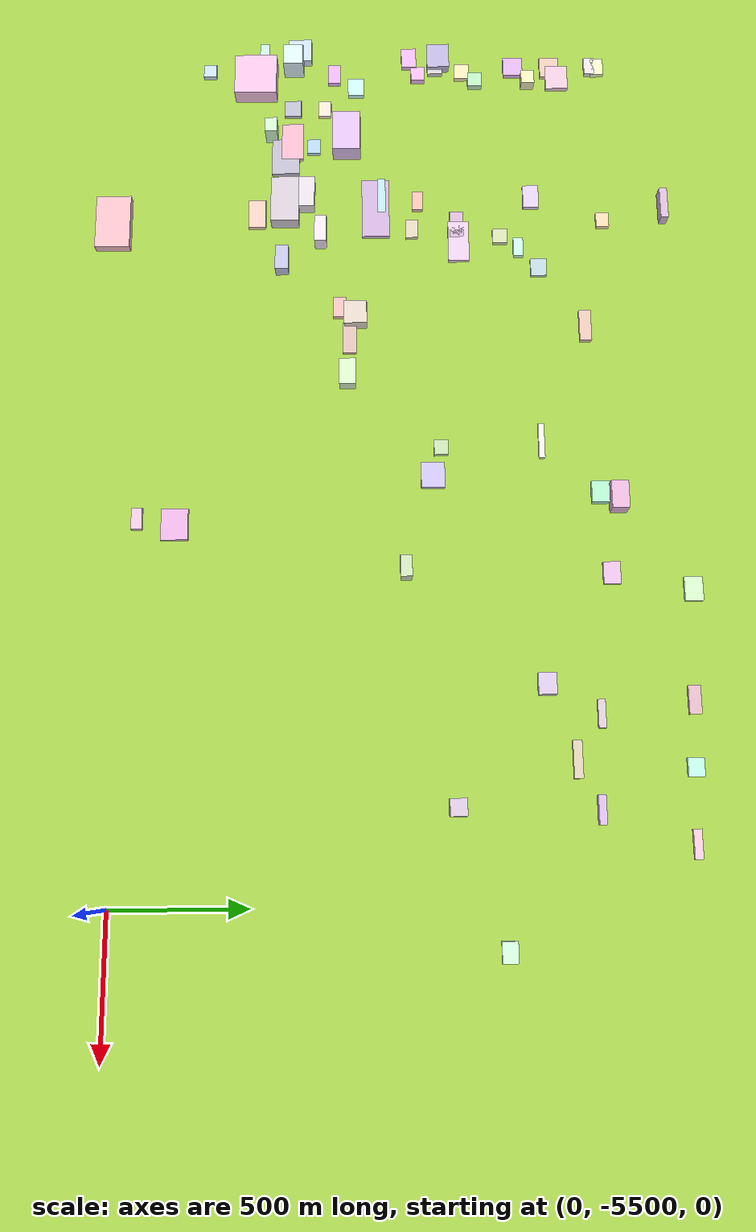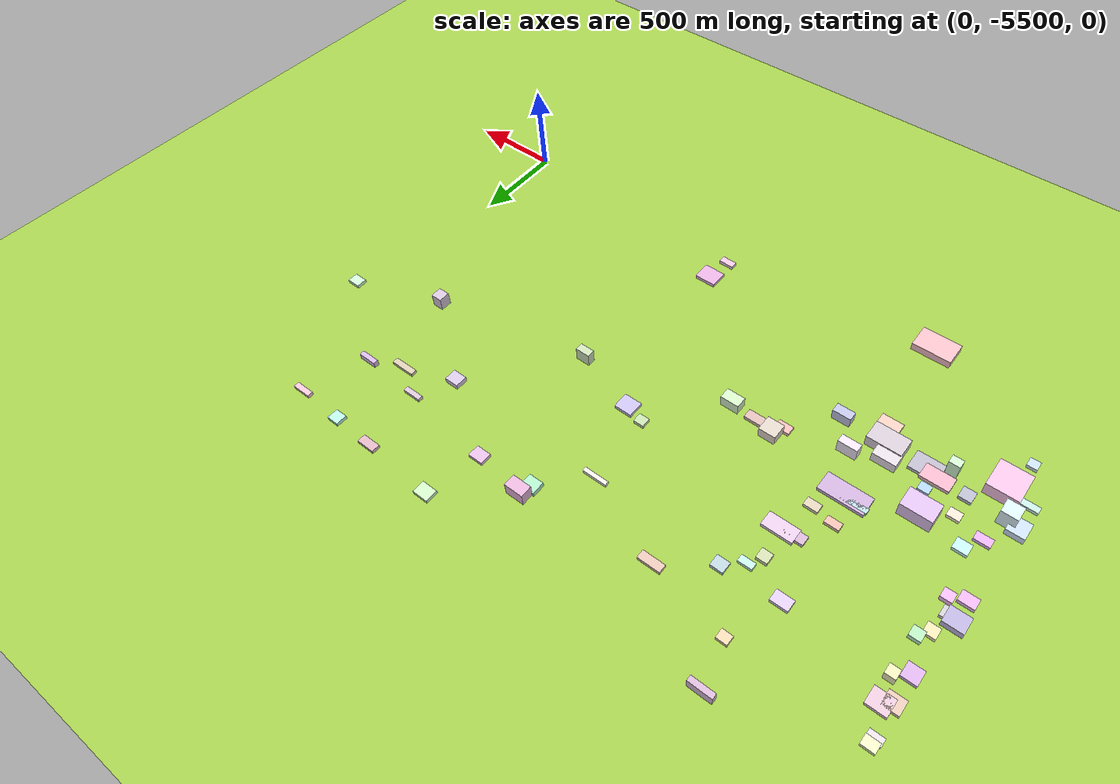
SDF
<sdf version="1.9">
 <world name="city_map">
  <model name="ground_plane">
   <static>1</static>
   <link name="link">
    <collision name="collision">
     <geometry><plane><normal>0 0 1</normal><size>11000 11000</size></plane></geometry>
    </collision>
    <visual name="visual">
     <geometry><plane><normal>0 0 1</normal><size>11000 11000</size></plane></geometry>
     <material>
      <ambient>0.551 0.712 0.210 1</ambient>
      <diffuse>0.651 0.812 0.310 1</diffuse>
      <specular>0.1 0.1 0.05 1</specular>
     </material>
    </visual>
   </link>
  </model>
  <model name="building_653500482">
   <static>1</static>
   <pose>-2604.0051835988834 -5582.626435734209 22.200000000000003 0 0 0</pose>
   <link name="link">
    <collision name="collision">
     <geometry><box><size>216.86070000015434 136.2527178387331 44.400000000000006</size></box></geometry>
    </collision>
    <visual name="visual">
     <cast_shadows>false</cast_shadows>
     <geometry><box><size>216.86070000015434 136.2527178387331 44.400000000000006</size></box></geometry>
     <material>
      <ambient>0.874 0.657 0.689 1</ambient>
      <diffuse>0.974 0.757 0.789 1</diffuse>
      <specular>0.292 0.227 0.237 1</specular>
      <emissive>0.01 0.01 0.01 1</emissive>
     </material>
    </visual>
   </link>
  </model>
  <model name="building_520531805">
   <static>1</static>
   <pose>-3240.141640792003 -5026.5202927813725 37.8 0 0 0</pose>
   <link name="link">
    <collision name="collision">
     <geometry><box><size>168.93913088291936 168.6756000001921 75.6</size></box></geometry>
    </collision>
    <visual name="visual">
     <cast_shadows>false</cast_shadows>
     <geometry><box><size>168.93913088291936 168.6756000001921 75.6</size></box></geometry>
     <material>
      <ambient>0.885 0.679 0.810 1</ambient>
      <diffuse>0.985 0.779 0.910 1</diffuse>
      <specular>0.296 0.234 0.273 1</specular>
      <emissive>0.01 0.01 0.01 1</emissive>
     </material>
    </visual>
   </link>
  </model>
  <model name="building_821050579">
   <static>1</static>
   <pose>-2662.0593865212245 -4547.052437178215 10.0 0 0 0</pose>
   <link name="link">
    <collision name="collision">
     <geometry><box><size>244.63290000054627 108.05267966975711 20</size></box></geometry>
    </collision>
    <visual name="visual">
     <cast_shadows>false</cast_shadows>
     <geometry><box><size>244.63290000054627 108.05267966975711 20</size></box></geometry>
     <material>
      <ambient>0.718 0.606 0.764 1</ambient>
      <diffuse>0.818 0.706 0.864 1</diffuse>
      <specular>0.245 0.212 0.259 1</specular>
      <emissive>0.01 0.01 0.01 1</emissive>
     </material>
    </visual>
   </link>
  </model>
  <model name="building_314246355">
   <static>1</static>
   <pose>-2685.380747875094 -4904.575528613325 32.400000000000006 0 0 0</pose>
   <link name="link">
    <collision name="collision">
     <geometry><box><size>188.5113000001155 109.05462941880297 64.80000000000001</size></box></geometry>
    </collision>
    <visual name="visual">
     <cast_shadows>false</cast_shadows>
     <geometry><box><size>188.5113000001155 109.05462941880297 64.80000000000001</size></box></geometry>
     <material>
      <ambient>0.743 0.704 0.743 1</ambient>
      <diffuse>0.843 0.804 0.843 1</diffuse>
      <specular>0.253 0.241 0.253 1</specular>
      <emissive>0.01 0.01 0.01 1</emissive>
     </material>
    </visual>
   </link>
  </model>
  <model name="building_877271874">
   <static>1</static>
   <pose>-2974.4919341141454 -4660.538683888396 42.900000000000006 0 0 0</pose>
   <link name="link">
    <collision name="collision">
     <geometry><box><size>167.13270000030178 110.57020615283798 85.80000000000001</size></box></geometry>
    </collision>
    <visual name="visual">
     <cast_shadows>false</cast_shadows>
     <geometry><box><size>167.13270000030178 110.57020615283798 85.80000000000001</size></box></geometry>
     <material>
      <ambient>0.783 0.664 0.839 1</ambient>
      <diffuse>0.883 0.764 0.939 1</diffuse>
      <specular>0.265 0.229 0.282 1</specular>
      <emissive>0.01 0.01 0.01 1</emissive>
     </material>
    </visual>
   </link>
  </model>
  <model name="building_73124910">
   <static>1</static>
   <pose>-2895.2679757678984 -4904.899736270048 10.0 0 0 0</pose>
   <link name="link">
    <collision name="collision">
     <geometry><box><size>152.08110000028796 109.29157100156543 20</size></box></geometry>
    </collision>
    <visual name="visual">
     <cast_shadows>false</cast_shadows>
     <geometry><box><size>152.08110000028796 109.29157100156543 20</size></box></geometry>
     <material>
      <ambient>0.652 0.640 0.706 1</ambient>
      <diffuse>0.752 0.740 0.806 1</diffuse>
      <specular>0.226 0.222 0.242 1</specular>
      <emissive>0.01 0.01 0.01 1</emissive>
     </material>
    </visual>
   </link>
  </model>
  <model name="building_66953042">
   <static>1</static>
   <pose>-2517.160657430864 -4220.694569329739 10.0 0 0 0</pose>
   <link name="link">
    <collision name="collision">
     <geometry><box><size>165.35670000005354 80.96472344231486 20</size></box></geometry>
    </collision>
    <visual name="visual">
     <cast_shadows>false</cast_shadows>
     <geometry><box><size>165.35670000005354 80.96472344231486 20</size></box></geometry>
     <material>
      <ambient>0.814 0.716 0.820 1</ambient>
      <diffuse>0.914 0.816 0.920 1</diffuse>
      <specular>0.274 0.245 0.276 1</specular>
      <emissive>0.01 0.01 0.01 1</emissive>
     </material>
    </visual>
   </link>
  </model>
  <model name="building_295627989">
   <static>1</static>
   <pose>-2962.5813234051216 -4878.330231258752 10.5 0 0 0</pose>
   <link name="link">
    <collision name="collision">
     <geometry><box><size>154.2900000000742 85.47857116064893 21.0</size></box></geometry>
    </collision>
    <visual name="visual">
     <cast_shadows>false</cast_shadows>
     <geometry><box><size>154.2900000000742 85.47857116064893 21.0</size></box></geometry>
     <material>
      <ambient>0.848 0.631 0.701 1</ambient>
      <diffuse>0.948 0.731 0.801 1</diffuse>
      <specular>0.284 0.219 0.240 1</specular>
      <emissive>0.01 0.01 0.01 1</emissive>
     </material>
    </visual>
   </link>
  </model>
  <model name="building_99820344">
   <static>1</static>
   <pose>-1373.2390480153508 -5305.4322332134 10.0 0 0 0</pose>
   <link name="link">
    <collision name="collision">
     <geometry><box><size>119.62469999957648 100.49652009439666 20</size></box></geometry>
    </collision>
    <visual name="visual">
     <cast_shadows>false</cast_shadows>
     <geometry><box><size>119.62469999957648 100.49652009439666 20</size></box></geometry>
     <material>
      <ambient>0.804 0.605 0.786 1</ambient>
      <diffuse>0.904 0.705 0.886 1</diffuse>
      <specular>0.271 0.211 0.266 1</specular>
      <emissive>0.01 0.01 0.01 1</emissive>
     </material>
    </visual>
   </link>
  </model>
  <model name="building_670335168">
   <static>1</static>
   <pose>-3340.657789854417 -4286.667918963547 19.86998374602054 0 0 0</pose>
   <link name="link">
    <collision name="collision">
     <geometry><box><size>105.08370000000866 89.0641605143381 39.73996749204108</size></box></geometry>
    </collision>
    <visual name="visual">
     <cast_shadows>false</cast_shadows>
     <geometry><box><size>105.08370000000866 89.0641605143381 39.73996749204108</size></box></geometry>
     <material>
      <ambient>0.651 0.616 0.774 1</ambient>
      <diffuse>0.751 0.716 0.874 1</diffuse>
      <specular>0.225 0.215 0.262 1</specular>
      <emissive>0.01 0.01 0.01 1</emissive>
     </material>
    </visual>
   </link>
  </model>
  <model name="building_588152921">
   <static>1</static>
   <pose>-3247.281962087013 -3803.487144261264 10.0 0 0 0</pose>
   <link name="link">
    <collision name="collision">
     <geometry><box><size>104.00730134189341 89.11079999948157 20</size></box></geometry>
    </collision>
    <visual name="visual">
     <cast_shadows>false</cast_shadows>
     <geometry><box><size>104.00730134189341 89.11079999948157 20</size></box></geometry>
     <material>
      <ambient>0.824 0.703 0.767 1</ambient>
      <diffuse>0.924 0.803 0.867 1</diffuse>
      <specular>0.277 0.241 0.260 1</specular>
      <emissive>0.01 0.01 0.01 1</emissive>
     </material>
    </visual>
   </link>
  </model>
  <model name="building_729136275">
   <static>1</static>
   <pose>-2721.057861055257 -4824.314860981551 28.893648101877897 0 0 0</pose>
   <link name="link">
    <collision name="collision">
     <geometry><box><size>126.48450000008182 72.43606522774323 57.787296203755794</size></box></geometry>
    </collision>
    <visual name="visual">
     <cast_shadows>false</cast_shadows>
     <geometry><box><size>126.48450000008182 72.43606522774323 57.787296203755794</size></box></geometry>
     <material>
      <ambient>0.805 0.777 0.808 1</ambient>
      <diffuse>0.905 0.877 0.908 1</diffuse>
      <specular>0.271 0.263 0.272 1</specular>
      <emissive>0.01 0.01 0.01 1</emissive>
     </material>
    </visual>
   </link>
  </model>
  <model name="building_86624100">
   <static>1</static>
   <pose>-3371.028400906166 -4850.050272665423 19.91263633964656 0 0 0</pose>
   <link name="link">
    <collision name="collision">
     <geometry><box><size>94.84843902376116 94.49430000008618 39.82527267929312</size></box></geometry>
    </collision>
    <visual name="visual">
     <cast_shadows>false</cast_shadows>
     <geometry><box><size>94.84843902376116 94.49430000008618 39.82527267929312</size></box></geometry>
     <material>
      <ambient>0.716 0.779 0.894 1</ambient>
      <diffuse>0.816 0.879 0.994 1</diffuse>
      <specular>0.245 0.264 0.298 1</specular>
      <emissive>0.01 0.01 0.01 1</emissive>
     </material>
    </visual>
   </link>
  </model>
  <model name="building_515723981">
   <static>1</static>
   <pose>-1555.133530322658 -4340.096439708893 10.0 0 0 0</pose>
   <link name="link">
    <collision name="collision">
     <geometry><box><size>98.91499821384119 88.46699999984509 20</size></box></geometry>
    </collision>
    <visual name="visual">
     <cast_shadows>false</cast_shadows>
     <geometry><box><size>98.91499821384119 88.46699999984509 20</size></box></geometry>
     <material>
      <ambient>0.704 0.666 0.836 1</ambient>
      <diffuse>0.804 0.766 0.936 1</diffuse>
      <specular>0.241 0.230 0.281 1</specular>
      <emissive>0.01 0.01 0.01 1</emissive>
     </material>
    </visual>
   </link>
  </model>
  <model name="building_276921543">
   <static>1</static>
   <pose>-2203.6096288548183 -4628.225660254877 28.906833826541146 0 0 0</pose>
   <link name="link">
    <collision name="collision">
     <geometry><box><size>92.6850000002375 87.3601793160458 57.81366765308229</size></box></geometry>
    </collision>
    <visual name="visual">
     <cast_shadows>false</cast_shadows>
     <geometry><box><size>92.6850000002375 87.3601793160458 57.81366765308229</size></box></geometry>
     <material>
      <ambient>0.795 0.743 0.699 1</ambient>
      <diffuse>0.895 0.843 0.799 1</diffuse>
      <specular>0.269 0.253 0.240 1</specular>
      <emissive>0.01 0.01 0.01 1</emissive>
     </material>
    </visual>
   </link>
  </model>
  <model name="building_341991905">
   <static>1</static>
   <pose>-2642.587936707573 -5016.179199569576 10.0 0 0 0</pose>
   <link name="link">
    <collision name="collision">
     <geometry><box><size>117.604500000418 67.24586556298046 20</size></box></geometry>
    </collision>
    <visual name="visual">
     <cast_shadows>false</cast_shadows>
     <geometry><box><size>117.604500000418 67.24586556298046 20</size></box></geometry>
     <material>
      <ambient>0.863 0.714 0.663 1</ambient>
      <diffuse>0.963 0.814 0.763 1</diffuse>
      <specular>0.289 0.244 0.229 1</specular>
      <emissive>0.01 0.01 0.01 1</emissive>
     </material>
    </visual>
   </link>
  </model>
  <model name="building_451141027">
   <static>1</static>
   <pose>-3313.3084012795453 -4874.203663980146 49.761233852646996 0 0 0</pose>
   <link name="link">
    <collision name="collision">
     <geometry><box><size>86.85749999996517 79.41345082587002 99.52246770529399</size></box></geometry>
    </collision>
    <visual name="visual">
     <cast_shadows>false</cast_shadows>
     <geometry><box><size>86.85749999996517 79.41345082587002 99.52246770529399</size></box></geometry>
     <material>
      <ambient>0.765 0.851 0.878 1</ambient>
      <diffuse>0.865 0.951 0.978 1</diffuse>
      <specular>0.260 0.285 0.293 1</specular>
      <emissive>0.01 0.01 0.01 1</emissive>
     </material>
    </visual>
   </link>
  </model>
  <model name="building_603742472">
   <static>1</static>
   <pose>-3321.1097241464604 -4996.060606077754 10.0 0 0 0</pose>
   <link name="link">
    <collision name="collision">
     <geometry><box><size>184.48200000035087 37.15221572890274 20</size></box></geometry>
    </collision>
    <visual name="visual">
     <cast_shadows>false</cast_shadows>
     <geometry><box><size>184.48200000035087 37.15221572890274 20</size></box></geometry>
     <material>
      <ambient>0.692 0.829 0.797 1</ambient>
      <diffuse>0.792 0.929 0.897 1</diffuse>
      <specular>0.238 0.279 0.269 1</specular>
      <emissive>0.01 0.01 0.01 1</emissive>
     </material>
    </visual>
   </link>
  </model>
  <model name="building_549142539">
   <static>1</static>
   <pose>-1458.0557611224112 -3649.4379624518892 36.8792950964704 0 0 0</pose>
   <link name="link">
    <collision name="collision">
     <geometry><box><size>105.1129137323899 64.26899999942037 73.7585901929408</size></box></geometry>
    </collision>
    <visual name="visual">
     <cast_shadows>false</cast_shadows>
     <geometry><box><size>105.1129137323899 64.26899999942037 73.7585901929408</size></box></geometry>
     <material>
      <ambient>0.808 0.618 0.758 1</ambient>
      <diffuse>0.908 0.718 0.858 1</diffuse>
      <specular>0.272 0.215 0.258 1</specular>
      <emissive>0.01 0.01 0.01 1</emissive>
     </material>
    </visual>
   </link>
  </model>
  <model name="building_146040116">
   <static>1</static>
   <pose>-3292.979910300491 -3831.2121629505623 10.0 0 0 0</pose>
   <link name="link">
    <collision name="collision">
     <geometry><box><size>85.54105360604868 76.80089999995943 20</size></box></geometry>
    </collision>
    <visual name="visual">
     <cast_shadows>false</cast_shadows>
     <geometry><box><size>85.54105360604868 76.80089999995943 20</size></box></geometry>
     <material>
      <ambient>0.815 0.692 0.632 1</ambient>
      <diffuse>0.915 0.792 0.732 1</diffuse>
      <specular>0.274 0.238 0.220 1</specular>
      <emissive>0.01 0.01 0.01 1</emissive>
     </material>
    </visual>
   </link>
  </model>
  <model name="building_841690448">
   <static>1</static>
   <pose>-2111.476673031957 -4651.747711486006 10.0 0 0 0</pose>
   <link name="link">
    <collision name="collision">
     <geometry><box><size>123.37650000004174 52.306851640249555 20</size></box></geometry>
    </collision>
    <visual name="visual">
     <cast_shadows>false</cast_shadows>
     <geometry><box><size>123.37650000004174 52.306851640249555 20</size></box></geometry>
     <material>
      <ambient>0.777 0.648 0.630 1</ambient>
      <diffuse>0.877 0.748 0.730 1</diffuse>
      <specular>0.263 0.224 0.219 1</specular>
      <emissive>0.01 0.01 0.01 1</emissive>
     </material>
    </visual>
   </link>
  </model>
  <model name="building_544273530">
   <static>1</static>
   <pose>-1958.949434418737 -4659.015786728819 30.94492301390327 0 0 0</pose>
   <link name="link">
    <collision name="collision">
     <geometry><box><size>102.28650000044581 62.461240091738254 61.88984602780654</size></box></geometry>
    </collision>
    <visual name="visual">
     <cast_shadows>false</cast_shadows>
     <geometry><box><size>102.28650000044581 62.461240091738254 61.88984602780654</size></box></geometry>
     <material>
      <ambient>0.749 0.852 0.695 1</ambient>
      <diffuse>0.849 0.952 0.795 1</diffuse>
      <specular>0.255 0.286 0.239 1</specular>
      <emissive>0.01 0.01 0.01 1</emissive>
     </material>
    </visual>
   </link>
  </model>
  <model name="building_249132803">
   <static>1</static>
   <pose>-3297.978830885343 -3980.4362859552775 10.0 0 0 0</pose>
   <link name="link">
    <collision name="collision">
     <geometry><box><size>79.93997263318778 77.8664999997929 20</size></box></geometry>
    </collision>
    <visual name="visual">
     <cast_shadows>false</cast_shadows>
     <geometry><box><size>79.93997263318778 77.8664999997929 20</size></box></geometry>
     <material>
      <ambient>0.773 0.612 0.825 1</ambient>
      <diffuse>0.873 0.712 0.925 1</diffuse>
      <specular>0.262 0.214 0.277 1</specular>
      <emissive>0.01 0.01 0.01 1</emissive>
     </material>
    </visual>
   </link>
  </model>
  <model name="building_182372849">
   <static>1</static>
   <pose>-1109.2570853139002 -3391.4865123908685 10.0 0 0 0</pose>
   <link name="link">
    <collision name="collision">
     <geometry><box><size>88.189499999757 67.41988927158472 20</size></box></geometry>
    </collision>
    <visual name="visual">
     <cast_shadows>false</cast_shadows>
     <geometry><box><size>88.189499999757 67.41988927158472 20</size></box></geometry>
     <material>
      <ambient>0.728 0.876 0.689 1</ambient>
      <diffuse>0.828 0.976 0.789 1</diffuse>
      <specular>0.248 0.293 0.237 1</specular>
      <emissive>0.01 0.01 0.01 1</emissive>
     </material>
    </visual>
   </link>
  </model>
  <model name="building_911622507">
   <static>1</static>
   <pose>-2708.107834472266 -3929.0695559904084 10.0 0 0 0</pose>
   <link name="link">
    <collision name="collision">
     <geometry><box><size>94.08360000001892 61.43824767818961 20</size></box></geometry>
    </collision>
    <visual name="visual">
     <cast_shadows>false</cast_shadows>
     <geometry><box><size>94.08360000001892 61.43824767818961 20</size></box></geometry>
     <material>
      <ambient>0.792 0.716 0.893 1</ambient>
      <diffuse>0.892 0.816 0.993 1</diffuse>
      <specular>0.268 0.245 0.298 1</specular>
      <emissive>0.01 0.01 0.01 1</emissive>
     </material>
    </visual>
   </link>
  </model>
  <model name="building_817703149">
   <static>1</static>
   <pose>-2589.697051879792 -4226.885028936961 10.0 0 0 0</pose>
   <link name="link">
    <collision name="collision">
     <geometry><box><size>108.06959999941057 52.815993443409425 20</size></box></geometry>
    </collision>
    <visual name="visual">
     <cast_shadows>false</cast_shadows>
     <geometry><box><size>108.06959999941057 52.815993443409425 20</size></box></geometry>
     <material>
      <ambient>0.750 0.624 0.742 1</ambient>
      <diffuse>0.850 0.724 0.842 1</diffuse>
      <specular>0.255 0.217 0.253 1</specular>
      <emissive>0.01 0.01 0.01 1</emissive>
     </material>
    </visual>
   </link>
  </model>
  <model name="building_338590897">
   <static>1</static>
   <pose>-2153.9388812499533 -3738.465006082496 10.0 0 0 0</pose>
   <link name="link">
    <collision name="collision">
     <geometry><box><size>124.51980000078322 45.4633280185428 20</size></box></geometry>
    </collision>
    <visual name="visual">
     <cast_shadows>false</cast_shadows>
     <geometry><box><size>124.51980000078322 45.4633280185428 20</size></box></geometry>
     <material>
      <ambient>0.817 0.677 0.631 1</ambient>
      <diffuse>0.917 0.777 0.731 1</diffuse>
      <specular>0.275 0.233 0.219 1</specular>
      <emissive>0.01 0.01 0.01 1</emissive>
     </material>
    </visual>
   </link>
  </model>
  <model name="building_946817650">
   <static>1</static>
   <pose>-1480.9661611942852 -3712.9900691870703 14.711423365537613 0 0 0</pose>
   <link name="link">
    <collision name="collision">
     <geometry><box><size>80.37509999992665 70.21564845765049 29.422846731075225</size></box></geometry>
    </collision>
    <visual name="visual">
     <cast_shadows>false</cast_shadows>
     <geometry><box><size>80.37509999992665 70.21564845765049 29.422846731075225</size></box></geometry>
     <material>
      <ambient>0.600 0.845 0.703 1</ambient>
      <diffuse>0.700 0.945 0.803 1</diffuse>
      <specular>0.210 0.284 0.241 1</specular>
      <emissive>0.01 0.01 0.01 1</emissive>
     </material>
    </visual>
   </link>
  </model>
  <model name="building_812126885">
   <static>1</static>
   <pose>-766.0258418476809 -3943.410206826992 14.968992316528391 0 0 0</pose>
   <link name="link">
    <collision name="collision">
     <geometry><box><size>78.58724695576166 66.79979999981356 29.937984633056782</size></box></geometry>
    </collision>
    <visual name="visual">
     <cast_shadows>false</cast_shadows>
     <geometry><box><size>78.58724695576166 66.79979999981356 29.937984633056782</size></box></geometry>
     <material>
      <ambient>0.749 0.686 0.805 1</ambient>
      <diffuse>0.849 0.786 0.905 1</diffuse>
      <specular>0.255 0.236 0.272 1</specular>
      <emissive>0.01 0.01 0.01 1</emissive>
     </material>
    </visual>
   </link>
  </model>
  <model name="building_673237749">
   <static>1</static>
   <pose>-1172.4063447994192 -3688.1905623423595 10.0 0 0 0</pose>
   <link name="link">
    <collision name="collision">
     <geometry><box><size>82.44979536680262 63.28110000049492 20</size></box></geometry>
    </collision>
    <visual name="visual">
     <cast_shadows>false</cast_shadows>
     <geometry><box><size>82.44979536680262 63.28110000049492 20</size></box></geometry>
     <material>
      <ambient>0.802 0.654 0.803 1</ambient>
      <diffuse>0.902 0.754 0.903 1</diffuse>
      <specular>0.271 0.226 0.271 1</specular>
      <emissive>0.01 0.01 0.01 1</emissive>
     </material>
    </visual>
   </link>
  </model>
  <model name="building_979664183">
   <static>1</static>
   <pose>-2436.5547420082053 -4914.777766090368 30.54222229922076 0 0 0</pose>
   <link name="link">
    <collision name="collision">
     <geometry><box><size>99.7334999997932 51.26835065308049 61.08444459844152</size></box></geometry>
    </collision>
    <visual name="visual">
     <cast_shadows>false</cast_shadows>
     <geometry><box><size>99.7334999997932 51.26835065308049 61.08444459844152</size></box></geometry>
     <material>
      <ambient>0.666 0.674 0.804 1</ambient>
      <diffuse>0.766 0.774 0.904 1</diffuse>
      <specular>0.230 0.232 0.271 1</specular>
      <emissive>0.01 0.01 0.01 1</emissive>
     </material>
    </visual>
   </link>
  </model>
  <model name="building_23318892">
   <static>1</static>
   <pose>-3341.2013676764877 -4405.95239316118 12.0 0 0 0</pose>
   <link name="link">
    <collision name="collision">
     <geometry><box><size>83.50266923710788 59.329500000060875 24.0</size></box></geometry>
    </collision>
    <visual name="visual">
     <cast_shadows>false</cast_shadows>
     <geometry><box><size>83.50266923710788 59.329500000060875 24.0</size></box></geometry>
     <material>
      <ambient>0.833 0.626 0.843 1</ambient>
      <diffuse>0.933 0.726 0.943 1</diffuse>
      <specular>0.280 0.218 0.283 1</specular>
      <emissive>0.01 0.01 0.01 1</emissive>
     </material>
    </visual>
   </link>
  </model>
  <model name="building_483609035">
   <static>1</static>
   <pose>-2552.058345012802 -4763.314523385718 37.68403771366869 0 0 0</pose>
   <link name="link">
    <collision name="collision">
     <geometry><box><size>105.72750000043385 46.49366412045156 75.36807542733737</size></box></geometry>
    </collision>
    <visual name="visual">
     <cast_shadows>false</cast_shadows>
     <geometry><box><size>105.72750000043385 46.49366412045156 75.36807542733737</size></box></geometry>
     <material>
      <ambient>0.849 0.801 0.871 1</ambient>
      <diffuse>0.949 0.901 0.971 1</diffuse>
      <specular>0.285 0.270 0.291 1</specular>
      <emissive>0.01 0.01 0.01 1</emissive>
     </material>
    </visual>
   </link>
  </model>
  <model name="building_378221003">
   <static>1</static>
   <pose>-3209.0836173160633 -4622.086403028829 10.0 0 0 0</pose>
   <link name="link">
    <collision name="collision">
     <geometry><box><size>76.19839976255557 64.33559999940996 20</size></box></geometry>
    </collision>
    <visual name="visual">
     <cast_shadows>false</cast_shadows>
     <geometry><box><size>76.19839976255557 64.33559999940996 20</size></box></geometry>
     <material>
      <ambient>0.686 0.895 0.867 1</ambient>
      <diffuse>0.786 0.995 0.967 1</diffuse>
      <specular>0.236 0.299 0.290 1</specular>
      <emissive>0.01 0.01 0.01 1</emissive>
     </material>
    </visual>
   </link>
  </model>
  <model name="building_452446500">
   <static>1</static>
   <pose>-2719.067366525626 -4523.519222328697 10.0 0 0 0</pose>
   <link name="link">
    <collision name="collision">
     <geometry><box><size>144.2000999996793 31.53736833087398 20</size></box></geometry>
    </collision>
    <visual name="visual">
     <cast_shadows>false</cast_shadows>
     <geometry><box><size>144.2000999996793 31.53736833087398 20</size></box></geometry>
     <material>
      <ambient>0.652 0.797 0.820 1</ambient>
      <diffuse>0.752 0.897 0.920 1</diffuse>
      <specular>0.226 0.269 0.276 1</specular>
      <emissive>0.01 0.01 0.01 1</emissive>
     </material>
    </visual>
   </link>
  </model>
  <model name="building_464212743">
   <static>1</static>
   <pose>-703.3635298281098 -3416.069379165434 10.0 0 0 0</pose>
   <link name="link">
    <collision name="collision">
     <geometry><box><size>101.42401806282795 44.8218000000935 20</size></box></geometry>
    </collision>
    <visual name="visual">
     <cast_shadows>false</cast_shadows>
     <geometry><box><size>101.42401806282795 44.8218000000935 20</size></box></geometry>
     <material>
      <ambient>0.777 0.622 0.671 1</ambient>
      <diffuse>0.877 0.722 0.771 1</diffuse>
      <specular>0.263 0.217 0.231 1</specular>
      <emissive>0.01 0.01 0.01 1</emissive>
     </material>
    </visual>
   </link>
  </model>
  <model name="building_210526403">
   <static>1</static>
   <pose>-3113.4792832817916 -4877.598815742376 10.0 0 0 0</pose>
   <link name="link">
    <collision name="collision">
     <geometry><box><size>66.98849999965262 66.4463625125667 20</size></box></geometry>
    </collision>
    <visual name="visual">
     <cast_shadows>false</cast_shadows>
     <geometry><box><size>66.98849999965262 66.4463625125667 20</size></box></geometry>
     <material>
      <ambient>0.640 0.647 0.719 1</ambient>
      <diffuse>0.740 0.747 0.819 1</diffuse>
      <specular>0.222 0.224 0.246 1</specular>
      <emissive>0.01 0.01 0.01 1</emissive>
     </material>
    </visual>
   </link>
  </model>
  <model name="building_41845828">
   <static>1</static>
   <pose>-497.34292090687313 -3845.523336103082 10.0 0 0 0</pose>
   <link name="link">
    <collision name="collision">
     <geometry><box><size>134.3044192257441 32.90040000037919 20</size></box></geometry>
    </collision>
    <visual name="visual">
     <cast_shadows>false</cast_shadows>
     <geometry><box><size>134.3044192257441 32.90040000037919 20</size></box></geometry>
     <material>
      <ambient>0.761 0.708 0.612 1</ambient>
      <diffuse>0.861 0.808 0.712 1</diffuse>
      <specular>0.258 0.243 0.214 1</specular>
      <emissive>0.01 0.01 0.01 1</emissive>
     </material>
    </visual>
   </link>
  </model>
  <model name="building_458066984">
   <static>1</static>
   <pose>-2401.0395251842733 -3909.3908834852737 10.0 0 0 0</pose>
   <link name="link">
    <collision name="collision">
     <geometry><box><size>70.12418155951548 61.82700000006491 20</size></box></geometry>
    </collision>
    <visual name="visual">
     <cast_shadows>false</cast_shadows>
     <geometry><box><size>70.12418155951548 61.82700000006491 20</size></box></geometry>
     <material>
      <ambient>0.652 0.740 0.770 1</ambient>
      <diffuse>0.752 0.840 0.870 1</diffuse>
      <specular>0.226 0.252 0.261 1</specular>
      <emissive>0.01 0.01 0.01 1</emissive>
     </material>
    </visual>
   </link>
  </model>
  <model name="building_110334206">
   <static>1</static>
   <pose>151.15329969040727 -4108.447446651866 10.0 0 0 0</pose>
   <link name="link">
    <collision name="collision">
     <geometry><box><size>73.85821421755492 56.27699999988067 20</size></box></geometry>
    </collision>
    <visual name="visual">
     <cast_shadows>false</cast_shadows>
     <geometry><box><size>73.85821421755492 56.27699999988067 20</size></box></geometry>
     <material>
      <ambient>0.721 0.893 0.750 1</ambient>
      <diffuse>0.821 0.993 0.850 1</diffuse>
      <specular>0.246 0.298 0.255 1</specular>
      <emissive>0.01 0.01 0.01 1</emissive>
     </material>
    </visual>
   </link>
  </model>
  <model name="building_441010903">
   <static>1</static>
   <pose>-3269.9744645235855 -4710.598861911881 10.0 0 0 0</pose>
   <link name="link">
    <collision name="collision">
     <geometry><box><size>83.88269999990428 48.23084981907171 20</size></box></geometry>
    </collision>
    <visual name="visual">
     <cast_shadows>false</cast_shadows>
     <geometry><box><size>83.88269999990428 48.23084981907171 20</size></box></geometry>
     <material>
      <ambient>0.813 0.609 0.890 1</ambient>
      <diffuse>0.913 0.709 0.990 1</diffuse>
      <specular>0.274 0.213 0.297 1</specular>
      <emissive>0.01 0.01 0.01 1</emissive>
     </material>
    </visual>
   </link>
  </model>
  <model name="building_850686008">
   <static>1</static>
   <pose>-2239.635792056592 -4690.276941579044 10.0 0 0 0</pose>
   <link name="link">
    <collision name="collision">
     <geometry><box><size>80.59710000015485 49.90727587713278 20</size></box></geometry>
    </collision>
    <visual name="visual">
     <cast_shadows>false</cast_shadows>
     <geometry><box><size>80.59710000015485 49.90727587713278 20</size></box></geometry>
     <material>
      <ambient>0.894 0.654 0.645 1</ambient>
      <diffuse>0.994 0.754 0.745 1</diffuse>
      <specular>0.298 0.226 0.223 1</specular>
      <emissive>0.01 0.01 0.01 1</emissive>
     </material>
    </visual>
   </link>
  </model>
  <model name="building_974942373">
   <static>1</static>
   <pose>-3301.4663666949205 -4300.130394915278 10.0 0 0 0</pose>
   <link name="link">
    <collision name="collision">
     <geometry><box><size>66.99959999978233 59.975858048443065 20</size></box></geometry>
    </collision>
    <visual name="visual">
     <cast_shadows>false</cast_shadows>
     <geometry><box><size>66.99959999978233 59.975858048443065 20</size></box></geometry>
     <material>
      <ambient>0.734 0.722 0.749 1</ambient>
      <diffuse>0.834 0.822 0.849 1</diffuse>
      <specular>0.250 0.247 0.255 1</specular>
      <emissive>0.01 0.01 0.01 1</emissive>
     </material>
    </visual>
   </link>
  </model>
  <model name="building_484020123">
   <static>1</static>
   <pose>-464.8836782872225 -3428.234474790077 10.0 0 0 0</pose>
   <link name="link">
    <collision name="collision">
     <geometry><box><size>66.12911071791055 59.10749999983267 20</size></box></geometry>
    </collision>
    <visual name="visual">
     <cast_shadows>false</cast_shadows>
     <geometry><box><size>66.12911071791055 59.10749999983267 20</size></box></geometry>
     <material>
      <ambient>0.640 0.859 0.792 1</ambient>
      <diffuse>0.740 0.959 0.892 1</diffuse>
      <specular>0.222 0.288 0.268 1</specular>
      <emissive>0.01 0.01 0.01 1</emissive>
     </material>
    </visual>
   </link>
  </model>
  <model name="building_70596445">
   <static>1</static>
   <pose>-333.03065961208347 -4275.432099299126 37.5185840406088 0 0 0</pose>
   <link name="link">
    <collision name="collision">
     <geometry><box><size>62.38209022128255 61.20539999989916 75.0371680812176</size></box></geometry>
    </collision>
    <visual name="visual">
     <cast_shadows>false</cast_shadows>
     <geometry><box><size>62.38209022128255 61.20539999989916 75.0371680812176</size></box></geometry>
     <material>
      <ambient>0.746 0.684 0.761 1</ambient>
      <diffuse>0.846 0.784 0.861 1</diffuse>
      <specular>0.254 0.235 0.258 1</specular>
      <emissive>0.01 0.01 0.01 1</emissive>
     </material>
    </visual>
   </link>
  </model>
  <model name="building_578558724">
   <static>1</static>
   <pose>-2654.0445309469746 -3408.9487340492906 30.062326074127785 0 0 0</pose>
   <link name="link">
    <collision name="collision">
     <geometry><box><size>126.52890000060069 29.171368244037875 60.12465214825557</size></box></geometry>
    </collision>
    <visual name="visual">
     <cast_shadows>false</cast_shadows>
     <geometry><box><size>126.52890000060069 29.171368244037875 60.12465214825557</size></box></geometry>
     <material>
      <ambient>0.754 0.630 0.754 1</ambient>
      <diffuse>0.854 0.730 0.854 1</diffuse>
      <specular>0.256 0.219 0.256 1</specular>
      <emissive>0.01 0.01 0.01 1</emissive>
     </material>
    </visual>
   </link>
  </model>
  <model name="building_617106694">
   <static>1</static>
   <pose>-3277.081753830054 -4190.547602991689 10.5 0 0 0</pose>
   <link name="link">
    <collision name="collision">
     <geometry><box><size>62.28209999986234 59.25112907382269 21.0</size></box></geometry>
    </collision>
    <visual name="visual">
     <cast_shadows>false</cast_shadows>
     <geometry><box><size>62.28209999986234 59.25112907382269 21.0</size></box></geometry>
     <material>
      <ambient>0.864 0.817 0.636 1</ambient>
      <diffuse>0.964 0.917 0.736 1</diffuse>
      <specular>0.289 0.275 0.221 1</specular>
      <emissive>0.01 0.01 0.01 1</emissive>
     </material>
    </visual>
   </link>
  </model>
  <model name="building_663975501">
   <static>1</static>
   <pose>-2572.5908546582864 -4404.864704605574 10.0 0 0 0</pose>
   <link name="link">
    <collision name="collision">
     <geometry><box><size>76.81200000008914 47.99114053639194 20</size></box></geometry>
    </collision>
    <visual name="visual">
     <cast_shadows>false</cast_shadows>
     <geometry><box><size>76.81200000008914 47.99114053639194 20</size></box></geometry>
     <material>
      <ambient>0.790 0.736 0.645 1</ambient>
      <diffuse>0.890 0.836 0.745 1</diffuse>
      <specular>0.267 0.251 0.224 1</specular>
      <emissive>0.01 0.01 0.01 1</emissive>
     </material>
    </visual>
   </link>
  </model>
  <model name="building_266605899">
   <static>1</static>
   <pose>-3293.7626140452235 -3636.0513063178096 10.0 0 0 0</pose>
   <link name="link">
    <collision name="collision">
     <geometry><box><size>69.7753632376015 51.171000000152844 20</size></box></geometry>
    </collision>
    <visual name="visual">
     <cast_shadows>false</cast_shadows>
     <geometry><box><size>69.7753632376015 51.171000000152844 20</size></box></geometry>
     <material>
      <ambient>0.850 0.878 0.692 1</ambient>
      <diffuse>0.950 0.978 0.792 1</diffuse>
      <specular>0.285 0.293 0.238 1</specular>
      <emissive>0.01 0.01 0.01 1</emissive>
     </material>
    </visual>
   </link>
  </model>
  <model name="building_174310112">
   <static>1</static>
   <pose>-1194.6441317989643 -4445.631941711248 38.57901137932329 0 0 0</pose>
   <link name="link">
    <collision name="collision">
     <geometry><box><size>80.00880000037824 43.21869094056492 77.15802275864658</size></box></geometry>
    </collision>
    <visual name="visual">
     <cast_shadows>false</cast_shadows>
     <geometry><box><size>80.00880000037824 43.21869094056492 77.15802275864658</size></box></geometry>
     <material>
      <ambient>0.715 0.783 0.636 1</ambient>
      <diffuse>0.815 0.883 0.736 1</diffuse>
      <specular>0.244 0.265 0.221 1</specular>
      <emissive>0.01 0.01 0.01 1</emissive>
     </material>
    </visual>
   </link>
  </model>
  <model name="building_806930374">
   <static>1</static>
   <pose>-2536.4973796726463 -4057.033832842575 11.454704729898921 0 0 0</pose>
   <link name="link">
    <collision name="collision">
     <geometry><box><size>59.905017235172544 57.08729999988549 22.909409459797843</size></box></geometry>
    </collision>
    <visual name="visual">
     <cast_shadows>false</cast_shadows>
     <geometry><box><size>59.905017235172544 57.08729999988549 22.909409459797843</size></box></geometry>
     <material>
      <ambient>0.737 0.774 0.603 1</ambient>
      <diffuse>0.837 0.874 0.703 1</diffuse>
      <specular>0.251 0.262 0.211 1</specular>
      <emissive>0.01 0.01 0.01 1</emissive>
     </material>
    </visual>
   </link>
  </model>
  <model name="building_932987413">
   <static>1</static>
   <pose>-3112.0094343363967 -4749.211397729146 10.0 0 0 0</pose>
   <link name="link">
    <collision name="collision">
     <geometry><box><size>66.45793831617644 50.52719999972766 20</size></box></geometry>
    </collision>
    <visual name="visual">
     <cast_shadows>false</cast_shadows>
     <geometry><box><size>66.45793831617644 50.52719999972766 20</size></box></geometry>
     <material>
      <ambient>0.897 0.811 0.740 1</ambient>
      <diffuse>0.997 0.911 0.840 1</diffuse>
      <specular>0.299 0.273 0.252 1</specular>
      <emissive>0.01 0.01 0.01 1</emissive>
     </material>
    </visual>
   </link>
  </model>
  <model name="building_2549490">
   <static>1</static>
   <pose>-3234.861676044368 -4138.31421387232 15.0 0 0 0</pose>
   <link name="link">
    <collision name="collision">
     <geometry><box><size>59.44049999978063 56.33025006025136 30.0</size></box></geometry>
    </collision>
    <visual name="visual">
     <cast_shadows>false</cast_shadows>
     <geometry><box><size>59.44049999978063 56.33025006025136 30.0</size></box></geometry>
     <material>
      <ambient>0.646 0.835 0.666 1</ambient>
      <diffuse>0.746 0.935 0.766 1</diffuse>
      <specular>0.224 0.281 0.230 1</specular>
      <emissive>0.01 0.01 0.01 1</emissive>
     </material>
    </visual>
   </link>
  </model>
  <model name="building_549426315">
   <static>1</static>
   <pose>-2695.1458450739915 -4380.28617801932 10.0 0 0 0</pose>
   <link name="link">
    <collision name="collision">
     <geometry><box><size>78.35489999997947 42.116188983543424 20</size></box></geometry>
    </collision>
    <visual name="visual">
     <cast_shadows>false</cast_shadows>
     <geometry><box><size>78.35489999997947 42.116188983543424 20</size></box></geometry>
     <material>
      <ambient>0.847 0.656 0.606 1</ambient>
      <diffuse>0.947 0.756 0.706 1</diffuse>
      <specular>0.284 0.227 0.212 1</specular>
      <emissive>0.01 0.01 0.01 1</emissive>
     </material>
    </visual>
   </link>
  </model>
  <model name="building_83637792">
   <static>1</static>
   <pose>-1396.3479530857378 -5446.926106404581 10.0 0 0 0</pose>
   <link name="link">
    <collision name="collision">
     <geometry><box><size>81.24873283998863 40.54829999984122 20</size></box></geometry>
    </collision>
    <visual name="visual">
     <cast_shadows>false</cast_shadows>
     <geometry><box><size>81.24873283998863 40.54829999984122 20</size></box></geometry>
     <material>
      <ambient>0.831 0.687 0.788 1</ambient>
      <diffuse>0.931 0.787 0.888 1</diffuse>
      <specular>0.279 0.236 0.267 1</specular>
      <emissive>0.01 0.01 0.01 1</emissive>
     </material>
    </visual>
   </link>
  </model>
  <model name="building_294433533">
   <static>1</static>
   <pose>-3262.6224465131327 -4370.4259510512165 15.0 0 0 0</pose>
   <link name="link">
    <collision name="collision">
     <geometry><box><size>58.41930000046602 53.91272252111236 30.0</size></box></geometry>
    </collision>
    <visual name="visual">
     <cast_shadows>false</cast_shadows>
     <geometry><box><size>58.41930000046602 53.91272252111236 30.0</size></box></geometry>
     <material>
      <ambient>0.882 0.640 0.867 1</ambient>
      <diffuse>0.982 0.740 0.967 1</diffuse>
      <specular>0.295 0.222 0.290 1</specular>
      <emissive>0.01 0.01 0.01 1</emissive>
     </material>
    </visual>
   </link>
  </model>
  <model name="building_894445880">
   <static>1</static>
   <pose>-201.18504553867453 -3439.878166383464 10.0 0 0 0</pose>
   <link name="link">
    <collision name="collision">
     <geometry><box><size>104.20921936926432 29.970000000048458 20</size></box></geometry>
    </collision>
    <visual name="visual">
     <cast_shadows>false</cast_shadows>
     <geometry><box><size>104.20921936926432 29.970000000048458 20</size></box></geometry>
     <material>
      <ambient>0.893 0.687 0.758 1</ambient>
      <diffuse>0.993 0.787 0.858 1</diffuse>
      <specular>0.298 0.236 0.258 1</specular>
      <emissive>0.01 0.01 0.01 1</emissive>
     </material>
    </visual>
   </link>
  </model>
  <model name="building_571798967">
   <static>1</static>
   <pose>-1663.4114314437422 -4307.31472496272 10.0 0 0 0</pose>
   <link name="link">
    <collision name="collision">
     <geometry><box><size>58.65089663682374 52.56959999993427 20</size></box></geometry>
    </collision>
    <visual name="visual">
     <cast_shadows>false</cast_shadows>
     <geometry><box><size>58.65089663682374 52.56959999993427 20</size></box></geometry>
     <material>
      <ambient>0.693 0.780 0.603 1</ambient>
      <diffuse>0.793 0.880 0.703 1</diffuse>
      <specular>0.238 0.264 0.211 1</specular>
      <emissive>0.01 0.01 0.01 1</emissive>
     </material>
    </visual>
   </link>
  </model>
  <model name="building_755991198">
   <static>1</static>
   <pose>-1686.091067896111 -3926.763337908708 10.0 0 0 0</pose>
   <link name="link">
    <collision name="collision">
     <geometry><box><size>135.38812207054548 22.122299999828954 20</size></box></geometry>
    </collision>
    <visual name="visual">
     <cast_shadows>false</cast_shadows>
     <geometry><box><size>135.38812207054548 22.122299999828954 20</size></box></geometry>
     <material>
      <ambient>0.858 0.831 0.817 1</ambient>
      <diffuse>0.958 0.931 0.917 1</diffuse>
      <specular>0.287 0.279 0.275 1</specular>
      <emissive>0.01 0.01 0.01 1</emissive>
     </material>
    </visual>
   </link>
  </model>
  <model name="building_346984183">
   <static>1</static>
   <pose>-3298.114923284232 -3666.9350050651005 10.0 0 0 0</pose>
   <link name="link">
    <collision name="collision">
     <geometry><box><size>72.12122638304926 41.44740000009506 20</size></box></geometry>
    </collision>
    <visual name="visual">
     <cast_shadows>false</cast_shadows>
     <geometry><box><size>72.12122638304926 41.44740000009506 20</size></box></geometry>
     <material>
      <ambient>0.816 0.786 0.811 1</ambient>
      <diffuse>0.916 0.886 0.911 1</diffuse>
      <specular>0.275 0.266 0.273 1</specular>
      <emissive>0.01 0.01 0.01 1</emissive>
     </material>
    </visual>
   </link>
  </model>
  <model name="building_350448609">
   <static>1</static>
   <pose>-2939.8701252895135 -4792.9744222509935 10.5 0 0 0</pose>
   <link name="link">
    <collision name="collision">
     <geometry><box><size>59.102960326328464 50.205299999909414 21.0</size></box></geometry>
    </collision>
    <visual name="visual">
     <cast_shadows>false</cast_shadows>
     <geometry><box><size>59.102960326328464 50.205299999909414 21.0</size></box></geometry>
     <material>
      <ambient>0.613 0.745 0.898 1</ambient>
      <diffuse>0.713 0.845 0.998 1</diffuse>
      <specular>0.214 0.254 0.299 1</specular>
      <emissive>0.01 0.01 0.01 1</emissive>
     </material>
    </visual>
   </link>
  </model>
  <model name="building_494269573">
   <static>1</static>
   <pose>-2602.7903253229324 -3648.848915749976 10.0 0 0 0</pose>
   <link name="link">
    <collision name="collision">
     <geometry><box><size>59.413641713723734 49.761300000241704 20</size></box></geometry>
    </collision>
    <visual name="visual">
     <cast_shadows>false</cast_shadows>
     <geometry><box><size>59.413641713723734 49.761300000241704 20</size></box></geometry>
     <material>
      <ambient>0.897 0.759 0.619 1</ambient>
      <diffuse>0.997 0.859 0.719 1</diffuse>
      <specular>0.299 0.258 0.216 1</specular>
      <emissive>0.01 0.01 0.01 1</emissive>
     </material>
    </visual>
   </link>
  </model>
  <model name="building_334281386">
   <static>1</static>
   <pose>-2490.238503322845 -3986.3007904819524 10.0 0 0 0</pose>
   <link name="link">
    <collision name="collision">
     <geometry><box><size>77.02290000018763 38.02323580489589 20</size></box></geometry>
    </collision>
    <visual name="visual">
     <cast_shadows>false</cast_shadows>
     <geometry><box><size>77.02290000018763 38.02323580489589 20</size></box></geometry>
     <material>
      <ambient>0.690 0.883 0.814 1</ambient>
      <diffuse>0.790 0.983 0.914 1</diffuse>
      <specular>0.237 0.295 0.274 1</specular>
      <emissive>0.01 0.01 0.01 1</emissive>
     </material>
    </visual>
   </link>
  </model>
  <model name="building_806743283">
   <static>1</static>
   <pose>-3000.3967107223457 -4960.807214848765 45.032278580916376 0 0 0</pose>
   <link name="link">
    <collision name="collision">
     <geometry><box><size>59.70001837862507 47.39700000021685 90.06455716183275</size></box></geometry>
    </collision>
    <visual name="visual">
     <cast_shadows>false</cast_shadows>
     <geometry><box><size>59.70001837862507 47.39700000021685 90.06455716183275</size></box></geometry>
     <material>
      <ambient>0.733 0.883 0.728 1</ambient>
      <diffuse>0.833 0.983 0.828 1</diffuse>
      <specular>0.250 0.295 0.248 1</specular>
      <emissive>0.01 0.01 0.01 1</emissive>
     </material>
    </visual>
   </link>
  </model>
  <model name="building_470131932">
   <static>1</static>
   <pose>-657.018486120834 -3752.3318917832894 10.0 0 0 0</pose>
   <link name="link">
    <collision name="collision">
     <geometry><box><size>102.89100317317713 27.394799999925112 20</size></box></geometry>
    </collision>
    <visual name="visual">
     <cast_shadows>false</cast_shadows>
     <geometry><box><size>102.89100317317713 27.394799999925112 20</size></box></geometry>
     <material>
      <ambient>0.759 0.682 0.746 1</ambient>
      <diffuse>0.859 0.782 0.846 1</diffuse>
      <specular>0.258 0.235 0.254 1</specular>
      <emissive>0.01 0.01 0.01 1</emissive>
     </material>
    </visual>
   </link>
  </model>
  <model name="building_102480424">
   <static>1</static>
   <pose>-3290.9953304863625 -5217.91003339213 10.0 0 0 0</pose>
   <link name="link">
    <collision name="collision">
     <geometry><box><size>54.745200000120064 51.4203398029207 20</size></box></geometry>
    </collision>
    <visual name="visual">
     <cast_shadows>false</cast_shadows>
     <geometry><box><size>54.745200000120064 51.4203398029207 20</size></box></geometry>
     <material>
      <ambient>0.698 0.781 0.855 1</ambient>
      <diffuse>0.798 0.881 0.955 1</diffuse>
      <specular>0.239 0.264 0.286 1</specular>
      <emissive>0.01 0.01 0.01 1</emissive>
     </material>
    </visual>
   </link>
  </model>
  <model name="building_172457041">
   <static>1</static>
   <pose>-3229.8560309330624 -3924.525972435251 26.52301574118512 0 0 0</pose>
   <link name="link">
    <collision name="collision">
     <geometry><box><size>54.16800000047317 51.83262680353491 53.04603148237024</size></box></geometry>
    </collision>
    <visual name="visual">
     <cast_shadows>false</cast_shadows>
     <geometry><box><size>54.16800000047317 51.83262680353491 53.04603148237024</size></box></geometry>
     <material>
      <ambient>0.839 0.836 0.648 1</ambient>
      <diffuse>0.939 0.936 0.748 1</diffuse>
      <specular>0.282 0.281 0.224 1</specular>
      <emissive>0.01 0.01 0.01 1</emissive>
     </material>
    </visual>
   </link>
  </model>
  <model name="building_903143610">
   <static>1</static>
   <pose>-321.1426353752637 -3769.653577519576 17.836339609806117 0 0 0</pose>
   <link name="link">
    <collision name="collision">
     <geometry><box><size>102.94544726159643 27.05069999984744 35.672679219612235</size></box></geometry>
    </collision>
    <visual name="visual">
     <cast_shadows>false</cast_shadows>
     <geometry><box><size>102.94544726159643 27.05069999984744 35.672679219612235</size></box></geometry>
     <material>
      <ambient>0.751 0.632 0.813 1</ambient>
      <diffuse>0.851 0.732 0.913 1</diffuse>
      <specular>0.255 0.220 0.274 1</specular>
      <emissive>0.01 0.01 0.01 1</emissive>
     </material>
    </visual>
   </link>
  </model>
 </world>
</sdf>
